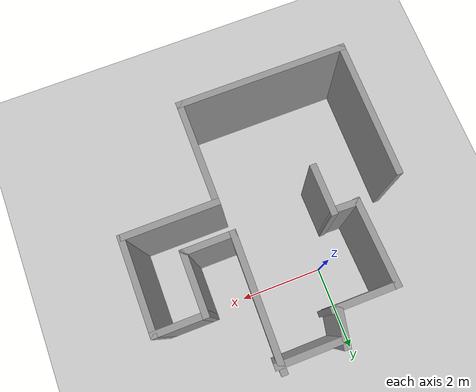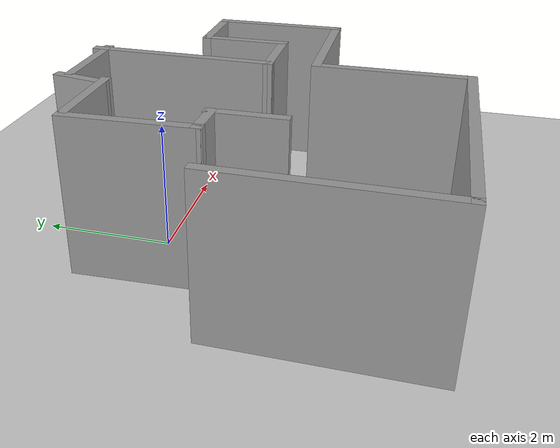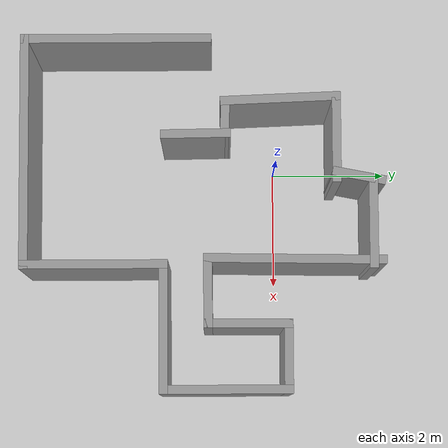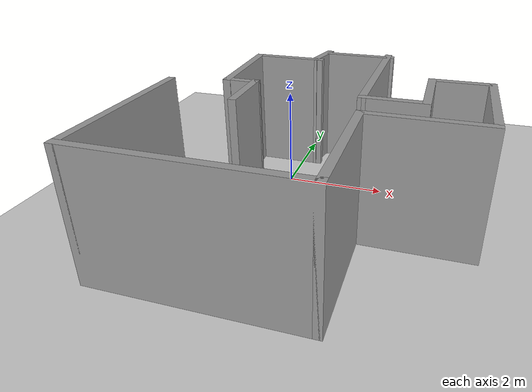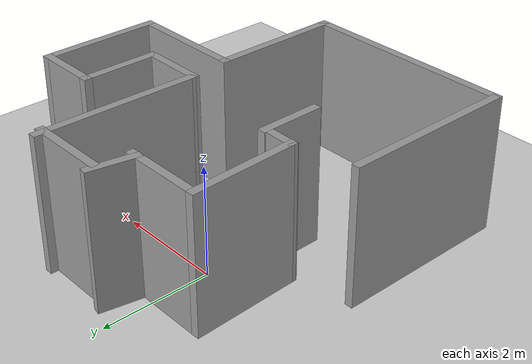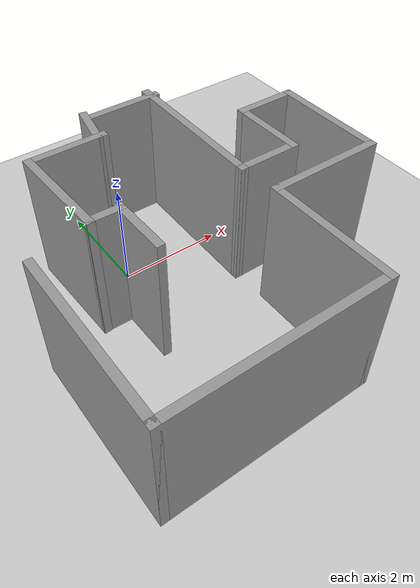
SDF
<sdf version="1.7">
 <world name="default">
  <light name="sun" type="directional">
   <pose>0 0 10 0 -0 0</pose>
   <diffuse>0.8 0.8 0.8 1</diffuse>
   <specular>0.2 0.2 0.2 1</specular>
   <attenuation>
    <range>1000</range>
    <constant>0.9</constant>
    <linear>0.01</linear>
    <quadratic>0.001</quadratic>
   </attenuation>
   <direction>-0.5 0.1 -0.9</direction>
   <spot><inner_angle>0</inner_angle><outer_angle>0</outer_angle><falloff>0</falloff></spot>
  </light>
  <model name="ground_plane">
   <static>1</static>
   <link name="link">
    <collision name="collision">
     <geometry><plane><normal>0 0 1</normal><size>100 100</size></plane></geometry>
     <surface>
      <contact><collide_bitmask>65535</collide_bitmask></contact>
      <friction><ode><mu>100</mu><mu2>50</mu2></ode></friction>
     </surface>
    </collision>
    <visual name="visual">
     <cast_shadows>0</cast_shadows>
     <geometry><plane><normal>0 0 1</normal><size>100 100</size></plane></geometry>
     <material>
      <script><uri>file://media/materials/scripts/gazebo.material</uri><name>Gazebo/Grey</name></script>
     </material>
    </visual>
   </link>
  </model>
  <gravity>0 0 -9.8</gravity>
  <magnetic_field>6e-06 2.3e-05 -4.2e-05</magnetic_field>
  <atmosphere type="adiabatic"/>
  <physics type="ode">
   <max_step_size>0.001</max_step_size>
   <real_time_factor>1</real_time_factor>
   <real_time_update_rate>1000</real_time_update_rate>
  </physics>
  <scene><ambient>0.4 0.4 0.4 1</ambient><background>0.7 0.7 0.7 1</background><shadows>1</shadows></scene>
  <spherical_coordinates>
   <surface_model>EARTH_WGS84</surface_model>
   <latitude_deg>0</latitude_deg>
   <longitude_deg>0</longitude_deg>
   <elevation>0</elevation>
   <heading_deg>0</heading_deg>
  </spherical_coordinates>
  <model name="map_src">
   <pose>0.930149 -1.24743 0 0 -0 0</pose>
   <link name="Wall_0">
    <collision name="Wall_0_Collision">
     <geometry><box><size>3.25 0.15 2.5</size></box></geometry>
     <pose>0 0 1.25 0 -0 0</pose>
    </collision>
    <visual name="Wall_0_Visual">
     <pose>0 0 1.25 0 -0 0</pose>
     <geometry><box><size>3.25 0.15 2.5</size></box></geometry>
     <material>
      <script><uri>file://media/materials/scripts/gazebo.material</uri><name>Gazebo/Grey</name></script>
      <ambient>1 1 1 1</ambient>
     </material>
     <meta><layer>0</layer></meta>
    </visual>
    <pose>-2.975 -1.47426 0 0 -0 -1.5708</pose>
   </link>
   <link name="Wall_1">
    <collision name="Wall_1_Collision">
     <geometry><box><size>4 0.15 2.5</size></box></geometry>
     <pose>0 0 1.25 0 -0 0</pose>
    </collision>
    <visual name="Wall_1_Visual">
     <pose>0 0 1.25 0 -0 0</pose>
     <geometry><box><size>4 0.15 2.5</size></box></geometry>
     <material>
      <script><uri>file://media/materials/scripts/gazebo.material</uri><name>Gazebo/Grey</name></script>
      <ambient>1 1 1 1</ambient>
     </material>
     <meta><layer>0</layer></meta>
    </visual>
    <pose>-1.05 -3.02426 0 0 -0 0</pose>
   </link>
   <link name="Wall_10">
    <collision name="Wall_10_Collision">
     <geometry><box><size>0.914884 0.15 2.5</size></box></geometry>
     <pose>0 0 1.25 0 -0 0</pose>
    </collision>
    <visual name="Wall_10_Visual">
     <pose>0 0 1.25 0 -0 0</pose>
     <geometry><box><size>0.914884 0.15 2.5</size></box></geometry>
     <material>
      <script><uri>file://media/materials/scripts/gazebo.material</uri><name>Gazebo/Grey</name></script>
      <ambient>1 1 1 1</ambient>
     </material>
     <meta><layer>0</layer></meta>
    </visual>
    <pose>-0.607699 2.63588 0 0 -0 -1.76083</pose>
   </link>
   <link name="Wall_11">
    <collision name="Wall_11_Collision">
     <geometry><box><size>1.43917 0.15 2.5</size></box></geometry>
     <pose>0 0 1.25 0 -0 0</pose>
    </collision>
    <visual name="Wall_11_Visual">
     <pose>0 0 1.25 0 -0 0</pose>
     <geometry><box><size>1.43917 0.15 2.5</size></box></geometry>
     <material>
      <script><uri>file://media/materials/scripts/gazebo.material</uri><name>Gazebo/Grey</name></script>
      <ambient>1 1 1 1</ambient>
     </material>
     <meta><layer>0</layer></meta>
    </visual>
    <pose>-1.21958 2.26033 0 0 -0 3.14159</pose>
   </link>
   <link name="Wall_12">
    <collision name="Wall_12_Collision">
     <geometry><box><size>2.045 0.15 2.5</size></box></geometry>
     <pose>0 0 1.25 0 -0 0</pose>
    </collision>
    <visual name="Wall_12_Visual">
     <pose>0 0 1.25 0 -0 0</pose>
     <geometry><box><size>2.045 0.15 2.5</size></box></geometry>
     <material>
      <script><uri>file://media/materials/scripts/gazebo.material</uri><name>Gazebo/Grey</name></script>
      <ambient>1 1 1 1</ambient>
     </material>
     <meta><layer>0</layer></meta>
    </visual>
    <pose>-1.93184 1.31356 0 0 -0 -1.53146</pose>
   </link>
   <link name="Wall_13">
    <collision name="Wall_13_Collision">
     <geometry><box><size>0.702694 0.15 2.5</size></box></geometry>
     <pose>0 0 1.25 0 -0 0</pose>
    </collision>
    <visual name="Wall_13_Visual">
     <pose>0 0 1.25 0 -0 0</pose>
     <geometry><box><size>0.702694 0.15 2.5</size></box></geometry>
     <material>
      <script><uri>file://media/materials/scripts/gazebo.material</uri><name>Gazebo/Grey</name></script>
      <ambient>1 1 1 1</ambient>
     </material>
     <meta><layer>0</layer></meta>
    </visual>
    <pose>-1.61834 0.374402 0 0 -0 -0.027521</pose>
   </link>
   <link name="Wall_14">
    <collision name="Wall_14_Collision">
     <geometry><box><size>1.19117 0.15 2.5</size></box></geometry>
     <pose>0 0 1.25 0 -0 0</pose>
    </collision>
    <visual name="Wall_14_Visual">
     <pose>0 0 1.25 0 -0 0</pose>
     <geometry><box><size>1.19117 0.15 2.5</size></box></geometry>
     <material>
      <script><uri>file://media/materials/scripts/gazebo.material</uri><name>Gazebo/Grey</name></script>
      <ambient>1 1 1 1</ambient>
     </material>
     <meta><layer>0</layer></meta>
    </visual>
    <pose>-1.33449 -0.123312 0 0 -0 -1.55619</pose>
   </link>
   <link name="Wall_2">
    <collision name="Wall_2_Collision">
     <geometry><box><size>2.5 0.15 2.5</size></box></geometry>
     <pose>0 0 1.25 0 -0 0</pose>
    </collision>
    <visual name="Wall_2_Visual">
     <pose>0 0 1.25 0 -0 0</pose>
     <geometry><box><size>2.5 0.15 2.5</size></box></geometry>
     <material>
      <script><uri>file://media/materials/scripts/gazebo.material</uri><name>Gazebo/Grey</name></script>
      <ambient>1 1 1 1</ambient>
     </material>
     <meta><layer>0</layer></meta>
    </visual>
    <pose>0.875 -1.84926 0 0 -0 1.5708</pose>
   </link>
   <link name="Wall_3">
    <collision name="Wall_3_Collision">
     <geometry><box><size>2.25 0.15 2.5</size></box></geometry>
     <pose>0 0 1.25 0 -0 0</pose>
    </collision>
    <visual name="Wall_3_Visual">
     <pose>0 0 1.25 0 -0 0</pose>
     <geometry><box><size>2.25 0.15 2.5</size></box></geometry>
     <material>
      <script><uri>file://media/materials/scripts/gazebo.material</uri><name>Gazebo/Grey</name></script>
      <ambient>1 1 1 1</ambient>
     </material>
     <meta><layer>0</layer></meta>
    </visual>
    <pose>1.925 -0.674257 0 0 -0 0</pose>
   </link>
   <link name="Wall_4">
    <collision name="Wall_4_Collision">
     <geometry><box><size>2.25 0.15 2.5</size></box></geometry>
     <pose>0 0 1.25 0 -0 0</pose>
    </collision>
    <visual name="Wall_4_Visual">
     <pose>0 0 1.25 0 -0 0</pose>
     <geometry><box><size>2.25 0.15 2.5</size></box></geometry>
     <material>
      <script><uri>file://media/materials/scripts/gazebo.material</uri><name>Gazebo/Grey</name></script>
      <ambient>1 1 1 1</ambient>
     </material>
     <meta><layer>0</layer></meta>
    </visual>
    <pose>2.975 0.375744 0 0 -0 1.5708</pose>
   </link>
   <link name="Wall_5">
    <collision name="Wall_5_Collision">
     <geometry><box><size>1.25 0.15 2.5</size></box></geometry>
     <pose>0 0 1.25 0 -0 0</pose>
    </collision>
    <visual name="Wall_5_Visual">
     <pose>0 0 1.25 0 -0 0</pose>
     <geometry><box><size>1.25 0.15 2.5</size></box></geometry>
     <material>
      <script><uri>file://media/materials/scripts/gazebo.material</uri><name>Gazebo/Grey</name></script>
      <ambient>1 1 1 1</ambient>
     </material>
     <meta><layer>0</layer></meta>
    </visual>
    <pose>2.425 1.42574 0 0 -0 3.14159</pose>
   </link>
   <link name="Wall_6">
    <collision name="Wall_6_Collision">
     <geometry><box><size>1.5 0.15 2.5</size></box></geometry>
     <pose>0 0 1.25 0 -0 0</pose>
    </collision>
    <visual name="Wall_6_Visual">
     <pose>0 0 1.25 0 -0 0</pose>
     <geometry><box><size>1.5 0.15 2.5</size></box></geometry>
     <material>
      <script><uri>file://media/materials/scripts/gazebo.material</uri><name>Gazebo/Grey</name></script>
      <ambient>1 1 1 1</ambient>
     </material>
     <meta><layer>0</layer></meta>
    </visual>
    <pose>1.875 0.750743 0 0 -0 -1.5708</pose>
   </link>
   <link name="Wall_7">
    <collision name="Wall_7_Collision">
     <geometry><box><size>1.25 0.15 2.5</size></box></geometry>
     <pose>0 0 1.25 0 -0 0</pose>
    </collision>
    <visual name="Wall_7_Visual">
     <pose>0 0 1.25 0 -0 0</pose>
     <geometry><box><size>1.25 0.15 2.5</size></box></geometry>
     <material>
      <script><uri>file://media/materials/scripts/gazebo.material</uri><name>Gazebo/Grey</name></script>
      <ambient>1 1 1 1</ambient>
     </material>
     <meta><layer>0</layer></meta>
    </visual>
    <pose>1.325 0.075743 0 0 -0 3.14159</pose>
   </link>
   <link name="Wall_8">
    <collision name="Wall_8_Collision">
     <geometry><box><size>3.08596 0.15 2.5</size></box></geometry>
     <pose>0 0 1.25 0 -0 0</pose>
    </collision>
    <visual name="Wall_8_Visual">
     <pose>0 0 1.25 0 -0 0</pose>
     <geometry><box><size>3.08596 0.15 2.5</size></box></geometry>
     <material>
      <script><uri>file://media/materials/scripts/gazebo.material</uri><name>Gazebo/Grey</name></script>
      <ambient>1 1 1 1</ambient>
     </material>
     <meta><layer>0</layer></meta>
    </visual>
    <pose>0.794772 1.54359 0 0 -0 1.55733</pose>
   </link>
   <link name="Wall_9">
    <collision name="Wall_9_Collision">
     <geometry><box><size>1.5 0.15 2.5</size></box></geometry>
     <pose>0 0 1.25 0 -0 0</pose>
    </collision>
    <visual name="Wall_9_Visual">
     <pose>0 0 1.25 0 -0 0</pose>
     <geometry><box><size>1.5 0.15 2.5</size></box></geometry>
     <material>
      <script><uri>file://media/materials/scripts/gazebo.material</uri><name>Gazebo/Grey</name></script>
      <ambient>1 1 1 1</ambient>
     </material>
     <meta><layer>0</layer></meta>
    </visual>
    <pose>0.209503 2.87152 0 0 -0 3.14159</pose>
   </link>
   <static>1</static>
  </model>
 </world>
</sdf>
